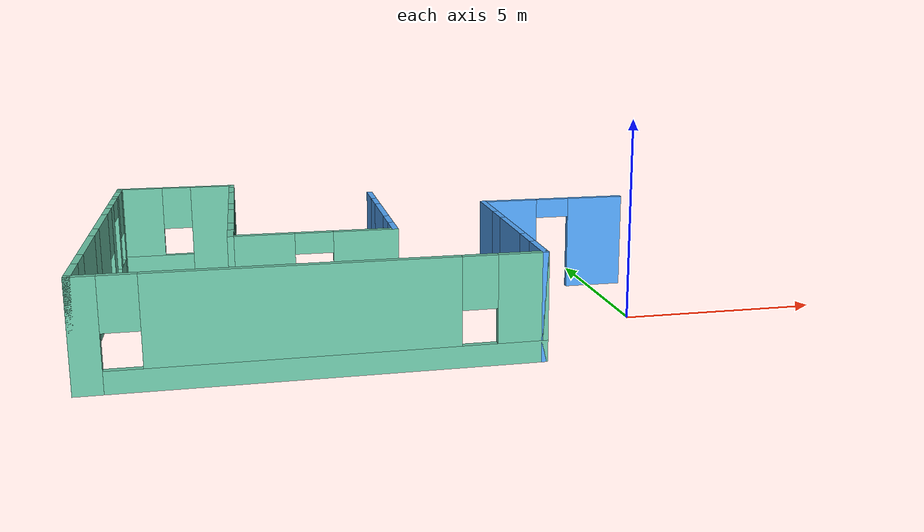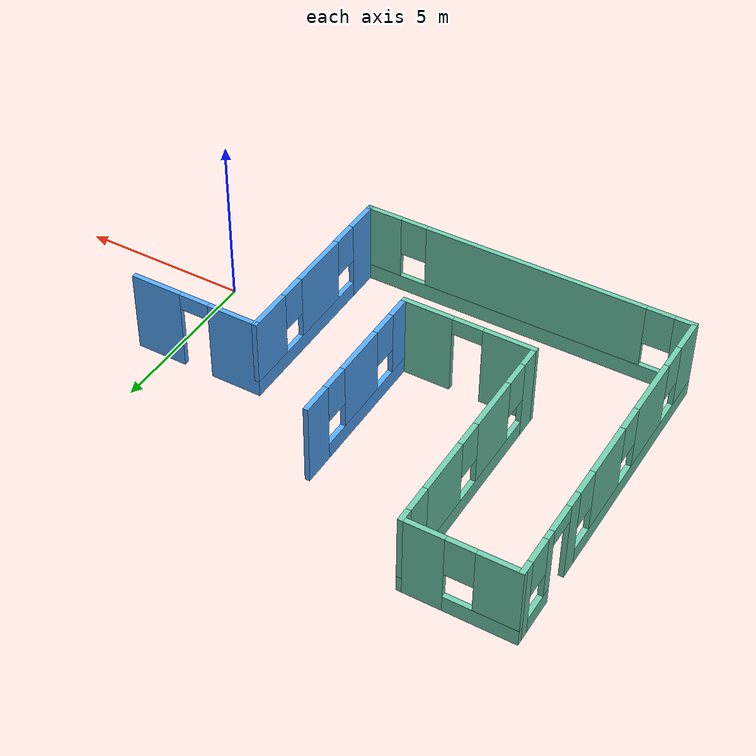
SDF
<sdf version="1.6">
 <model name="building1">
  <pose>-1.05133 2.29231 0 0 -0 0</pose>
  <link name="Wall_14">
   <pose>-4.775 0.5 0 0 0 -1.5708</pose>
   <visual name="Wall_14_Visual_0">
    <pose>-2.02075 0 1.25 0 -0 0</pose>
    <geometry><box><size>0.958501 0.15 2.5</size></box></geometry>
    <material>
     <script><uri>file://media/materials/scripts/gazebo.material</uri><name>Gazebo/Grey</name></script>
     <ambient>0.333333 0.666667 1 1</ambient>
    </material>
    <meta><layer>0</layer></meta>
   </visual>
   <collision name="Wall_14_Collision_0">
    <geometry><box><size>0.958501 0.15 2.5</size></box></geometry>
    <pose>-2.02075 0 1.25 0 -0 0</pose>
   </collision>
   <visual name="Wall_14_Visual_1">
    <pose>0.479251 0 0.25 0 -0 0</pose>
    <geometry><box><size>4.0415 0.15 0.5</size></box></geometry>
    <material>
     <script><uri>file://media/materials/scripts/gazebo.material</uri><name>Gazebo/Grey</name></script>
     <ambient>0.333333 0.666667 1 1</ambient>
    </material>
    <meta><layer>0</layer></meta>
   </visual>
   <collision name="Wall_14_Collision_1">
    <geometry><box><size>4.0415 0.15 0.5</size></box></geometry>
    <pose>0.479251 0 0.25 0 -0 0</pose>
   </collision>
   <visual name="Wall_14_Visual_2">
    <pose>0.076537 0 1.5 0 -0 0</pose>
    <geometry><box><size>1.63607 0.15 2</size></box></geometry>
    <material>
     <script><uri>file://media/materials/scripts/gazebo.material</uri><name>Gazebo/Grey</name></script>
     <ambient>0.333333 0.666667 1 1</ambient>
    </material>
    <meta><layer>0</layer></meta>
   </visual>
   <collision name="Wall_14_Collision_2">
    <geometry><box><size>1.63607 0.15 2</size></box></geometry>
    <pose>0.076537 0 1.5 0 -0 0</pose>
   </collision>
   <visual name="Wall_14_Visual_3">
    <pose>2.09729 0 1.5 0 -0 0</pose>
    <geometry><box><size>0.805427 0.15 2</size></box></geometry>
    <material>
     <script><uri>file://media/materials/scripts/gazebo.material</uri><name>Gazebo/Grey</name></script>
     <ambient>0.333333 0.666667 1 1</ambient>
    </material>
    <meta><layer>0</layer></meta>
   </visual>
   <collision name="Wall_14_Collision_3">
    <geometry><box><size>0.805427 0.15 2</size></box></geometry>
    <pose>2.09729 0 1.5 0 -0 0</pose>
   </collision>
   <visual name="Wall_14_Visual_4">
    <pose>-1.1415 0 1.9 0 -0 0</pose>
    <geometry><box><size>0.8 0.15 1.2</size></box></geometry>
    <material>
     <script><uri>file://media/materials/scripts/gazebo.material</uri><name>Gazebo/Grey</name></script>
     <ambient>0.333333 0.666667 1 1</ambient>
    </material>
    <meta><layer>0</layer></meta>
   </visual>
   <collision name="Wall_14_Collision_4">
    <geometry><box><size>0.8 0.15 1.2</size></box></geometry>
    <pose>-1.1415 0 1.9 0 -0 0</pose>
   </collision>
   <visual name="Wall_14_Visual_5">
    <pose>1.29457 0 1.9 0 -0 0</pose>
    <geometry><box><size>0.8 0.15 1.2</size></box></geometry>
    <material>
     <script><uri>file://media/materials/scripts/gazebo.material</uri><name>Gazebo/Grey</name></script>
     <ambient>0.333333 0.666667 1 1</ambient>
    </material>
    <meta><layer>0</layer></meta>
   </visual>
   <collision name="Wall_14_Collision_5">
    <geometry><box><size>0.8 0.15 1.2</size></box></geometry>
    <pose>1.29457 0 1.9 0 -0 0</pose>
   </collision>
  </link>
  <link name="Wall_15">
   <pose>-6.7 -1.925 0 0 -0 3.14159</pose>
   <visual name="Wall_15_Visual_0">
    <pose>-1.22391 0 1.25 0 -0 0</pose>
    <geometry><box><size>1.55217 0.15 2.5</size></box></geometry>
    <material>
     <script><uri>file://media/materials/scripts/gazebo.material</uri><name>Gazebo/Grey</name></script>
     <ambient>0.435294 0.796078 0.67451 1</ambient>
    </material>
    <meta><layer>0</layer></meta>
   </visual>
   <collision name="Wall_15_Collision_0">
    <geometry><box><size>1.55217 0.15 2.5</size></box></geometry>
    <pose>-1.22391 0 1.25 0 -0 0</pose>
   </collision>
   <visual name="Wall_15_Visual_1">
    <pose>1.22609 0 1.25 0 -0 0</pose>
    <geometry><box><size>1.54783 0.15 2.5</size></box></geometry>
    <material>
     <script><uri>file://media/materials/scripts/gazebo.material</uri><name>Gazebo/Grey</name></script>
     <ambient>0.435294 0.796078 0.67451 1</ambient>
    </material>
    <meta><layer>0</layer></meta>
   </visual>
   <collision name="Wall_15_Collision_1">
    <geometry><box><size>1.54783 0.15 2.5</size></box></geometry>
    <pose>1.22609 0 1.25 0 -0 0</pose>
   </collision>
   <visual name="Wall_15_Visual_2">
    <pose>0.002173 0 2.25 0 -0 0</pose>
    <geometry><box><size>0.9 0.15 0.5</size></box></geometry>
    <material>
     <script><uri>file://media/materials/scripts/gazebo.material</uri><name>Gazebo/Grey</name></script>
     <ambient>0.435294 0.796078 0.67451 1</ambient>
    </material>
    <meta><layer>0</layer></meta>
   </visual>
   <collision name="Wall_15_Collision_2">
    <geometry><box><size>0.9 0.15 0.5</size></box></geometry>
    <pose>0.002173 0 2.25 0 -0 0</pose>
   </collision>
  </link>
  <link name="Wall_16">
   <pose>-8.625 1.5 0 0 -0 1.5708</pose>
   <visual name="Wall_16_Visual_0">
    <pose>-3.11984 0 1.25 0 -0 0</pose>
    <geometry><box><size>0.760314 0.15 2.5</size></box></geometry>
    <material>
     <script><uri>file://media/materials/scripts/gazebo.material</uri><name>Gazebo/Grey</name></script>
     <ambient>0.435294 0.796078 0.67451 1</ambient>
    </material>
    <meta><layer>0</layer></meta>
   </visual>
   <collision name="Wall_16_Collision_0">
    <geometry><box><size>0.760314 0.15 2.5</size></box></geometry>
    <pose>-3.11984 0 1.25 0 -0 0</pose>
   </collision>
   <visual name="Wall_16_Visual_1">
    <pose>0.380157 0 0.25 0 -0 0</pose>
    <geometry><box><size>6.23969 0.15 0.5</size></box></geometry>
    <material>
     <script><uri>file://media/materials/scripts/gazebo.material</uri><name>Gazebo/Grey</name></script>
     <ambient>0.435294 0.796078 0.67451 1</ambient>
    </material>
    <meta><layer>0</layer></meta>
   </visual>
   <collision name="Wall_16_Collision_1">
    <geometry><box><size>6.23969 0.15 0.5</size></box></geometry>
    <pose>0.380157 0 0.25 0 -0 0</pose>
   </collision>
   <visual name="Wall_16_Visual_2">
    <pose>-1.08406 0 1.5 0 -0 0</pose>
    <geometry><box><size>1.71126 0.15 2</size></box></geometry>
    <material>
     <script><uri>file://media/materials/scripts/gazebo.material</uri><name>Gazebo/Grey</name></script>
     <ambient>0.435294 0.796078 0.67451 1</ambient>
    </material>
    <meta><layer>0</layer></meta>
   </visual>
   <collision name="Wall_16_Collision_2">
    <geometry><box><size>1.71126 0.15 2</size></box></geometry>
    <pose>-1.08406 0 1.5 0 -0 0</pose>
   </collision>
   <visual name="Wall_16_Visual_3">
    <pose>1.43472 0 1.5 0 -0 0</pose>
    <geometry><box><size>1.7263 0.15 2</size></box></geometry>
    <material>
     <script><uri>file://media/materials/scripts/gazebo.material</uri><name>Gazebo/Grey</name></script>
     <ambient>0.435294 0.796078 0.67451 1</ambient>
    </material>
    <meta><layer>0</layer></meta>
   </visual>
   <collision name="Wall_16_Collision_3">
    <geometry><box><size>1.7263 0.15 2</size></box></geometry>
    <pose>1.43472 0 1.5 0 -0 0</pose>
   </collision>
   <visual name="Wall_16_Visual_4">
    <pose>3.29894 0 1.5 0 -0 0</pose>
    <geometry><box><size>0.40213 0.15 2</size></box></geometry>
    <material>
     <script><uri>file://media/materials/scripts/gazebo.material</uri><name>Gazebo/Grey</name></script>
     <ambient>0.435294 0.796078 0.67451 1</ambient>
    </material>
    <meta><layer>0</layer></meta>
   </visual>
   <collision name="Wall_16_Collision_4">
    <geometry><box><size>0.40213 0.15 2</size></box></geometry>
    <pose>3.29894 0 1.5 0 -0 0</pose>
   </collision>
   <visual name="Wall_16_Visual_5">
    <pose>-2.33969 0 1.9 0 -0 0</pose>
    <geometry><box><size>0.8 0.15 1.2</size></box></geometry>
    <material>
     <script><uri>file://media/materials/scripts/gazebo.material</uri><name>Gazebo/Grey</name></script>
     <ambient>0.435294 0.796078 0.67451 1</ambient>
    </material>
    <meta><layer>0</layer></meta>
   </visual>
   <collision name="Wall_16_Collision_5">
    <geometry><box><size>0.8 0.15 1.2</size></box></geometry>
    <pose>-2.33969 0 1.9 0 -0 0</pose>
   </collision>
   <visual name="Wall_16_Visual_6">
    <pose>0.171574 0 1.9 0 -0 0</pose>
    <geometry><box><size>0.8 0.15 1.2</size></box></geometry>
    <material>
     <script><uri>file://media/materials/scripts/gazebo.material</uri><name>Gazebo/Grey</name></script>
     <ambient>0.435294 0.796078 0.67451 1</ambient>
    </material>
    <meta><layer>0</layer></meta>
   </visual>
   <collision name="Wall_16_Collision_6">
    <geometry><box><size>0.8 0.15 1.2</size></box></geometry>
    <pose>0.171574 0 1.9 0 -0 0</pose>
   </collision>
   <visual name="Wall_16_Visual_7">
    <pose>2.69787 0 1.9 0 -0 0</pose>
    <geometry><box><size>0.8 0.15 1.2</size></box></geometry>
    <material>
     <script><uri>file://media/materials/scripts/gazebo.material</uri><name>Gazebo/Grey</name></script>
     <ambient>0.435294 0.796078 0.67451 1</ambient>
    </material>
    <meta><layer>0</layer></meta>
   </visual>
   <collision name="Wall_16_Collision_7">
    <geometry><box><size>0.8 0.15 1.2</size></box></geometry>
    <pose>2.69787 0 1.9 0 -0 0</pose>
   </collision>
  </link>
  <link name="Wall_17">
   <pose>-10.2 4.925 0 0 -0 3.14159</pose>
   <visual name="Wall_17_Visual_0">
    <pose>-1.02361 0 1.25 0 -0 0</pose>
    <geometry><box><size>1.25279 0.15 2.5</size></box></geometry>
    <material>
     <script><uri>file://media/materials/scripts/gazebo.material</uri><name>Gazebo/Grey</name></script>
     <ambient>0.435294 0.796078 0.67451 1</ambient>
    </material>
    <meta><layer>0</layer></meta>
   </visual>
   <collision name="Wall_17_Collision_0">
    <geometry><box><size>1.25279 0.15 2.5</size></box></geometry>
    <pose>-1.02361 0 1.25 0 -0 0</pose>
   </collision>
   <visual name="Wall_17_Visual_1">
    <pose>0.626392 0 0.25 0 -0 0</pose>
    <geometry><box><size>2.04722 0.15 0.5</size></box></geometry>
    <material>
     <script><uri>file://media/materials/scripts/gazebo.material</uri><name>Gazebo/Grey</name></script>
     <ambient>0.435294 0.796078 0.67451 1</ambient>
    </material>
    <meta><layer>0</layer></meta>
   </visual>
   <collision name="Wall_17_Collision_1">
    <geometry><box><size>2.04722 0.15 0.5</size></box></geometry>
    <pose>0.626392 0 0.25 0 -0 0</pose>
   </collision>
   <visual name="Wall_17_Visual_2">
    <pose>1.02639 0 1.5 0 -0 0</pose>
    <geometry><box><size>1.24721 0.15 2</size></box></geometry>
    <material>
     <script><uri>file://media/materials/scripts/gazebo.material</uri><name>Gazebo/Grey</name></script>
     <ambient>0.435294 0.796078 0.67451 1</ambient>
    </material>
    <meta><layer>0</layer></meta>
   </visual>
   <collision name="Wall_17_Collision_2">
    <geometry><box><size>1.24721 0.15 2</size></box></geometry>
    <pose>1.02639 0 1.5 0 -0 0</pose>
   </collision>
   <visual name="Wall_17_Visual_3">
    <pose>0.002785 0 1.9 0 -0 0</pose>
    <geometry><box><size>0.8 0.15 1.2</size></box></geometry>
    <material>
     <script><uri>file://media/materials/scripts/gazebo.material</uri><name>Gazebo/Grey</name></script>
     <ambient>0.435294 0.796078 0.67451 1</ambient>
    </material>
    <meta><layer>0</layer></meta>
   </visual>
   <collision name="Wall_17_Collision_3">
    <geometry><box><size>0.8 0.15 1.2</size></box></geometry>
    <pose>0.002785 0 1.9 0 -0 0</pose>
   </collision>
  </link>
  <link name="Wall_2">
   <pose>-11.775 0 0 0 0 -1.5708</pose>
   <visual name="Wall_2_Visual_0">
    <pose>-4.7839 0 1.25 0 -0 0</pose>
    <geometry><box><size>0.432204 0.15 2.5</size></box></geometry>
    <material>
     <script><uri>file://media/materials/scripts/gazebo.material</uri><name>Gazebo/Grey</name></script>
     <ambient>0.435294 0.796078 0.67451 1</ambient>
    </material>
    <meta><layer>0</layer></meta>
   </visual>
   <collision name="Wall_2_Collision_0">
    <geometry><box><size>0.432204 0.15 2.5</size></box></geometry>
    <pose>-4.7839 0 1.25 0 -0 0</pose>
   </collision>
   <visual name="Wall_2_Visual_1">
    <pose>-2.32326 0 1.25 0 -0 0</pose>
    <geometry><box><size>0.503373 0.15 2.5</size></box></geometry>
    <material>
     <script><uri>file://media/materials/scripts/gazebo.material</uri><name>Gazebo/Grey</name></script>
     <ambient>0.435294 0.796078 0.67451 1</ambient>
    </material>
    <meta><layer>0</layer></meta>
   </visual>
   <collision name="Wall_2_Collision_1">
    <geometry><box><size>0.503373 0.15 2.5</size></box></geometry>
    <pose>-2.32326 0 1.25 0 -0 0</pose>
   </collision>
   <visual name="Wall_2_Visual_2">
    <pose>-4.02137 0 0.25 0 -0 0</pose>
    <geometry><box><size>1.09285 0.15 0.5</size></box></geometry>
    <material>
     <script><uri>file://media/materials/scripts/gazebo.material</uri><name>Gazebo/Grey</name></script>
     <ambient>0.435294 0.796078 0.67451 1</ambient>
    </material>
    <meta><layer>0</layer></meta>
   </visual>
   <collision name="Wall_2_Collision_2">
    <geometry><box><size>1.09285 0.15 0.5</size></box></geometry>
    <pose>-4.02137 0 0.25 0 -0 0</pose>
   </collision>
   <visual name="Wall_2_Visual_3">
    <pose>1.46421 0 0.25 0 -0 0</pose>
    <geometry><box><size>7.07157 0.15 0.5</size></box></geometry>
    <material>
     <script><uri>file://media/materials/scripts/gazebo.material</uri><name>Gazebo/Grey</name></script>
     <ambient>0.435294 0.796078 0.67451 1</ambient>
    </material>
    <meta><layer>0</layer></meta>
   </visual>
   <collision name="Wall_2_Collision_3">
    <geometry><box><size>7.07157 0.15 0.5</size></box></geometry>
    <pose>1.46421 0 0.25 0 -0 0</pose>
   </collision>
   <visual name="Wall_2_Visual_4">
    <pose>-3.62137 0 1.5 0 -0 0</pose>
    <geometry><box><size>0.292849 0.15 2</size></box></geometry>
    <material>
     <script><uri>file://media/materials/scripts/gazebo.material</uri><name>Gazebo/Grey</name></script>
     <ambient>0.435294 0.796078 0.67451 1</ambient>
    </material>
    <meta><layer>0</layer></meta>
   </visual>
   <collision name="Wall_2_Collision_4">
    <geometry><box><size>0.292849 0.15 2</size></box></geometry>
    <pose>-3.62137 0 1.5 0 -0 0</pose>
   </collision>
   <visual name="Wall_2_Visual_5">
    <pose>-3.62137 0 1.5 0 -0 0</pose>
    <geometry><box><size>0.292849 0.15 2</size></box></geometry>
    <material>
     <script><uri>file://media/materials/scripts/gazebo.material</uri><name>Gazebo/Grey</name></script>
     <ambient>0.435294 0.796078 0.67451 1</ambient>
    </material>
    <meta><layer>0</layer></meta>
   </visual>
   <collision name="Wall_2_Collision_5">
    <geometry><box><size>0.292849 0.15 2</size></box></geometry>
    <pose>-3.62137 0 1.5 0 -0 0</pose>
   </collision>
   <visual name="Wall_2_Visual_6">
    <pose>-0.415944 0 1.5 0 -0 0</pose>
    <geometry><box><size>1.71126 0.15 2</size></box></geometry>
    <material>
     <script><uri>file://media/materials/scripts/gazebo.material</uri><name>Gazebo/Grey</name></script>
     <ambient>0.435294 0.796078 0.67451 1</ambient>
    </material>
    <meta><layer>0</layer></meta>
   </visual>
   <collision name="Wall_2_Collision_6">
    <geometry><box><size>1.71126 0.15 2</size></box></geometry>
    <pose>-0.415944 0 1.5 0 -0 0</pose>
   </collision>
   <visual name="Wall_2_Visual_7">
    <pose>2.16298 0 1.5 0 -0 0</pose>
    <geometry><box><size>1.8466 0.15 2</size></box></geometry>
    <material>
     <script><uri>file://media/materials/scripts/gazebo.material</uri><name>Gazebo/Grey</name></script>
     <ambient>0.435294 0.796078 0.67451 1</ambient>
    </material>
    <meta><layer>0</layer></meta>
   </visual>
   <collision name="Wall_2_Collision_7">
    <geometry><box><size>1.8466 0.15 2</size></box></geometry>
    <pose>2.16298 0 1.5 0 -0 0</pose>
   </collision>
   <visual name="Wall_2_Visual_8">
    <pose>4.44314 0 1.5 0 -0 0</pose>
    <geometry><box><size>1.11372 0.15 2</size></box></geometry>
    <material>
     <script><uri>file://media/materials/scripts/gazebo.material</uri><name>Gazebo/Grey</name></script>
     <ambient>0.435294 0.796078 0.67451 1</ambient>
    </material>
    <meta><layer>0</layer></meta>
   </visual>
   <collision name="Wall_2_Collision_8">
    <geometry><box><size>1.11372 0.15 2</size></box></geometry>
    <pose>4.44314 0 1.5 0 -0 0</pose>
   </collision>
   <visual name="Wall_2_Visual_9">
    <pose>-4.1678 0 1.9 0 -0 0</pose>
    <geometry><box><size>0.8 0.15 1.2</size></box></geometry>
    <material>
     <script><uri>file://media/materials/scripts/gazebo.material</uri><name>Gazebo/Grey</name></script>
     <ambient>0.435294 0.796078 0.67451 1</ambient>
    </material>
    <meta><layer>0</layer></meta>
   </visual>
   <collision name="Wall_2_Collision_9">
    <geometry><box><size>0.8 0.15 1.2</size></box></geometry>
    <pose>-4.1678 0 1.9 0 -0 0</pose>
   </collision>
   <visual name="Wall_2_Visual_10">
    <pose>-1.67157 0 1.9 0 -0 0</pose>
    <geometry><box><size>0.8 0.15 1.2</size></box></geometry>
    <material>
     <script><uri>file://media/materials/scripts/gazebo.material</uri><name>Gazebo/Grey</name></script>
     <ambient>0.435294 0.796078 0.67451 1</ambient>
    </material>
    <meta><layer>0</layer></meta>
   </visual>
   <collision name="Wall_2_Collision_10">
    <geometry><box><size>0.8 0.15 1.2</size></box></geometry>
    <pose>-1.67157 0 1.9 0 -0 0</pose>
   </collision>
   <visual name="Wall_2_Visual_11">
    <pose>0.839686 0 1.9 0 -0 0</pose>
    <geometry><box><size>0.8 0.15 1.2</size></box></geometry>
    <material>
     <script><uri>file://media/materials/scripts/gazebo.material</uri><name>Gazebo/Grey</name></script>
     <ambient>0.435294 0.796078 0.67451 1</ambient>
    </material>
    <meta><layer>0</layer></meta>
   </visual>
   <collision name="Wall_2_Collision_11">
    <geometry><box><size>0.8 0.15 1.2</size></box></geometry>
    <pose>0.839686 0 1.9 0 -0 0</pose>
   </collision>
   <visual name="Wall_2_Visual_12">
    <pose>3.48628 0 1.9 0 -0 0</pose>
    <geometry><box><size>0.8 0.15 1.2</size></box></geometry>
    <material>
     <script><uri>file://media/materials/scripts/gazebo.material</uri><name>Gazebo/Grey</name></script>
     <ambient>0.435294 0.796078 0.67451 1</ambient>
    </material>
    <meta><layer>0</layer></meta>
   </visual>
   <collision name="Wall_2_Collision_12">
    <geometry><box><size>0.8 0.15 1.2</size></box></geometry>
    <pose>3.48628 0 1.9 0 -0 0</pose>
   </collision>
   <visual name="Wall_2_Visual_13">
    <pose>-3.02495 0 2.25 0 -0 0</pose>
    <geometry><box><size>0.9 0.15 0.5</size></box></geometry>
    <material>
     <script><uri>file://media/materials/scripts/gazebo.material</uri><name>Gazebo/Grey</name></script>
     <ambient>0.435294 0.796078 0.67451 1</ambient>
    </material>
    <meta><layer>0</layer></meta>
   </visual>
   <collision name="Wall_2_Collision_13">
    <geometry><box><size>0.9 0.15 0.5</size></box></geometry>
    <pose>-3.02495 0 2.25 0 -0 0</pose>
   </collision>
   <visual name="Wall_2_Visual_14">
    <pose>-3.02495 0 2.25 0 -0 0</pose>
    <geometry><box><size>0.9 0.15 0.5</size></box></geometry>
    <material>
     <script><uri>file://media/materials/scripts/gazebo.material</uri><name>Gazebo/Grey</name></script>
     <ambient>0.435294 0.796078 0.67451 1</ambient>
    </material>
    <meta><layer>0</layer></meta>
   </visual>
   <collision name="Wall_2_Collision_14">
    <geometry><box><size>0.9 0.15 0.5</size></box></geometry>
    <pose>-3.02495 0 2.25 0 -0 0</pose>
   </collision>
  </link>
  <link name="Wall_3">
   <pose>-6.85 -4.925 0 0 -0 0</pose>
   <visual name="Wall_3_Visual_0">
    <pose>-4.68767 0 1.25 0 -0 0</pose>
    <geometry><box><size>0.624664 0.15 2.5</size></box></geometry>
    <material>
     <script><uri>file://media/materials/scripts/gazebo.material</uri><name>Gazebo/Grey</name></script>
     <ambient>0.435294 0.796078 0.67451 1</ambient>
    </material>
    <meta><layer>0</layer></meta>
   </visual>
   <collision name="Wall_3_Collision_0">
    <geometry><box><size>0.624664 0.15 2.5</size></box></geometry>
    <pose>-4.68767 0 1.25 0 -0 0</pose>
   </collision>
   <visual name="Wall_3_Visual_1">
    <pose>0.312332 0 0.25 0 -0 0</pose>
    <geometry><box><size>9.37534 0.15 0.5</size></box></geometry>
    <material>
     <script><uri>file://media/materials/scripts/gazebo.material</uri><name>Gazebo/Grey</name></script>
     <ambient>0.435294 0.796078 0.67451 1</ambient>
    </material>
    <meta><layer>0</layer></meta>
   </visual>
   <collision name="Wall_3_Collision_1">
    <geometry><box><size>9.37534 0.15 0.5</size></box></geometry>
    <pose>0.312332 0 0.25 0 -0 0</pose>
   </collision>
   <visual name="Wall_3_Visual_2">
    <pose>-0.257319 0 1.5 0 -0 0</pose>
    <geometry><box><size>6.63603 0.15 2</size></box></geometry>
    <material>
     <script><uri>file://media/materials/scripts/gazebo.material</uri><name>Gazebo/Grey</name></script>
     <ambient>0.435294 0.796078 0.67451 1</ambient>
    </material>
    <meta><layer>0</layer></meta>
   </visual>
   <collision name="Wall_3_Collision_2">
    <geometry><box><size>6.63603 0.15 2</size></box></geometry>
    <pose>-0.257319 0 1.5 0 -0 0</pose>
   </collision>
   <visual name="Wall_3_Visual_3">
    <pose>4.43035 0 1.5 0 -0 0</pose>
    <geometry><box><size>1.1393 0.15 2</size></box></geometry>
    <material>
     <script><uri>file://media/materials/scripts/gazebo.material</uri><name>Gazebo/Grey</name></script>
     <ambient>0.435294 0.796078 0.67451 1</ambient>
    </material>
    <meta><layer>0</layer></meta>
   </visual>
   <collision name="Wall_3_Collision_3">
    <geometry><box><size>1.1393 0.15 2</size></box></geometry>
    <pose>4.43035 0 1.5 0 -0 0</pose>
   </collision>
   <visual name="Wall_3_Visual_4">
    <pose>-3.97534 0 1.9 0 -0 0</pose>
    <geometry><box><size>0.8 0.15 1.2</size></box></geometry>
    <material>
     <script><uri>file://media/materials/scripts/gazebo.material</uri><name>Gazebo/Grey</name></script>
     <ambient>0.435294 0.796078 0.67451 1</ambient>
    </material>
    <meta><layer>0</layer></meta>
   </visual>
   <collision name="Wall_3_Collision_4">
    <geometry><box><size>0.8 0.15 1.2</size></box></geometry>
    <pose>-3.97534 0 1.9 0 -0 0</pose>
   </collision>
   <visual name="Wall_3_Visual_5">
    <pose>3.4607 0 1.9 0 -0 0</pose>
    <geometry><box><size>0.8 0.15 1.2</size></box></geometry>
    <material>
     <script><uri>file://media/materials/scripts/gazebo.material</uri><name>Gazebo/Grey</name></script>
     <ambient>0.435294 0.796078 0.67451 1</ambient>
    </material>
    <meta><layer>0</layer></meta>
   </visual>
   <collision name="Wall_3_Collision_5">
    <geometry><box><size>0.8 0.15 1.2</size></box></geometry>
    <pose>3.4607 0 1.9 0 -0 0</pose>
   </collision>
  </link>
  <link name="Wall_4">
   <pose>-1.925 -2 0 0 -0 1.5708</pose>
   <visual name="Wall_4_Visual_0">
    <pose>-2.44314 0 1.25 0 -0 0</pose>
    <geometry><box><size>1.11372 0.15 2.5</size></box></geometry>
    <material>
     <script><uri>file://media/materials/scripts/gazebo.material</uri><name>Gazebo/Grey</name></script>
     <ambient>0.333333 0.666667 1 1</ambient>
    </material>
    <meta><layer>0</layer></meta>
   </visual>
   <collision name="Wall_4_Collision_0">
    <geometry><box><size>1.11372 0.15 2.5</size></box></geometry>
    <pose>-2.44314 0 1.25 0 -0 0</pose>
   </collision>
   <visual name="Wall_4_Visual_1">
    <pose>0.556859 0 0.25 0 -0 0</pose>
    <geometry><box><size>4.88628 0.15 0.5</size></box></geometry>
    <material>
     <script><uri>file://media/materials/scripts/gazebo.material</uri><name>Gazebo/Grey</name></script>
     <ambient>0.333333 0.666667 1 1</ambient>
    </material>
    <meta><layer>0</layer></meta>
   </visual>
   <collision name="Wall_4_Collision_1">
    <geometry><box><size>4.88628 0.15 0.5</size></box></geometry>
    <pose>0.556859 0 0.25 0 -0 0</pose>
   </collision>
   <visual name="Wall_4_Visual_2">
    <pose>-0.147947 0 1.5 0 -0 0</pose>
    <geometry><box><size>1.87667 0.15 2</size></box></geometry>
    <material>
     <script><uri>file://media/materials/scripts/gazebo.material</uri><name>Gazebo/Grey</name></script>
     <ambient>0.333333 0.666667 1 1</ambient>
    </material>
    <meta><layer>0</layer></meta>
   </visual>
   <collision name="Wall_4_Collision_2">
    <geometry><box><size>1.87667 0.15 2</size></box></geometry>
    <pose>-0.147947 0 1.5 0 -0 0</pose>
   </collision>
   <visual name="Wall_4_Visual_3">
    <pose>2.2952 0 1.5 0 -0 0</pose>
    <geometry><box><size>1.40961 0.15 2</size></box></geometry>
    <material>
     <script><uri>file://media/materials/scripts/gazebo.material</uri><name>Gazebo/Grey</name></script>
     <ambient>0.333333 0.666667 1 1</ambient>
    </material>
    <meta><layer>0</layer></meta>
   </visual>
   <collision name="Wall_4_Collision_3">
    <geometry><box><size>1.40961 0.15 2</size></box></geometry>
    <pose>2.2952 0 1.5 0 -0 0</pose>
   </collision>
   <visual name="Wall_4_Visual_4">
    <pose>-1.48628 0 1.9 0 -0 0</pose>
    <geometry><box><size>0.8 0.15 1.2</size></box></geometry>
    <material>
     <script><uri>file://media/materials/scripts/gazebo.material</uri><name>Gazebo/Grey</name></script>
     <ambient>0.333333 0.666667 1 1</ambient>
    </material>
    <meta><layer>0</layer></meta>
   </visual>
   <collision name="Wall_4_Collision_4">
    <geometry><box><size>0.8 0.15 1.2</size></box></geometry>
    <pose>-1.48628 0 1.9 0 -0 0</pose>
   </collision>
   <visual name="Wall_4_Visual_5">
    <pose>1.19039 0 1.9 0 -0 0</pose>
    <geometry><box><size>0.8 0.15 1.2</size></box></geometry>
    <material>
     <script><uri>file://media/materials/scripts/gazebo.material</uri><name>Gazebo/Grey</name></script>
     <ambient>0.333333 0.666667 1 1</ambient>
    </material>
    <meta><layer>0</layer></meta>
   </visual>
   <collision name="Wall_4_Collision_5">
    <geometry><box><size>0.8 0.15 1.2</size></box></geometry>
    <pose>1.19039 0 1.9 0 -0 0</pose>
   </collision>
  </link>
  <link name="Wall_5">
   <pose>0 0.925 0 0 -0 0</pose>
   <visual name="Wall_5_Visual_0">
    <pose>-1.22273 0 1.25 0 -0 0</pose>
    <geometry><box><size>1.55454 0.15 2.5</size></box></geometry>
    <material>
     <script><uri>file://media/materials/scripts/gazebo.material</uri><name>Gazebo/Grey</name></script>
     <ambient>0.333333 0.666667 1 1</ambient>
    </material>
    <meta><layer>0</layer></meta>
   </visual>
   <collision name="Wall_5_Collision_0">
    <geometry><box><size>1.55454 0.15 2.5</size></box></geometry>
    <pose>-1.22273 0 1.25 0 -0 0</pose>
   </collision>
   <visual name="Wall_5_Visual_1">
    <pose>1.22727 0 1.25 0 -0 0</pose>
    <geometry><box><size>1.54546 0.15 2.5</size></box></geometry>
    <material>
     <script><uri>file://media/materials/scripts/gazebo.material</uri><name>Gazebo/Grey</name></script>
     <ambient>0.333333 0.666667 1 1</ambient>
    </material>
    <meta><layer>0</layer></meta>
   </visual>
   <collision name="Wall_5_Collision_1">
    <geometry><box><size>1.54546 0.15 2.5</size></box></geometry>
    <pose>1.22727 0 1.25 0 -0 0</pose>
   </collision>
   <visual name="Wall_5_Visual_2">
    <pose>0.004543 0 2.25 0 -0 0</pose>
    <geometry><box><size>0.9 0.15 0.5</size></box></geometry>
    <material>
     <script><uri>file://media/materials/scripts/gazebo.material</uri><name>Gazebo/Grey</name></script>
     <ambient>0.333333 0.666667 1 1</ambient>
    </material>
    <meta><layer>0</layer></meta>
   </visual>
   <collision name="Wall_5_Collision_2">
    <geometry><box><size>0.9 0.15 0.5</size></box></geometry>
    <pose>0.004543 0 2.25 0 -0 0</pose>
   </collision>
  </link>
  <static>1</static>
 </model>
</sdf>
